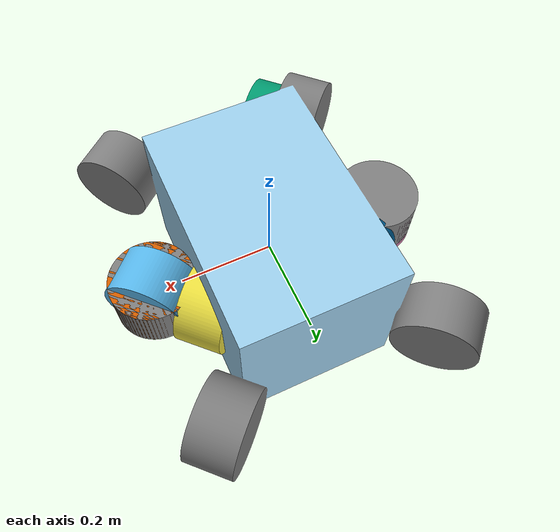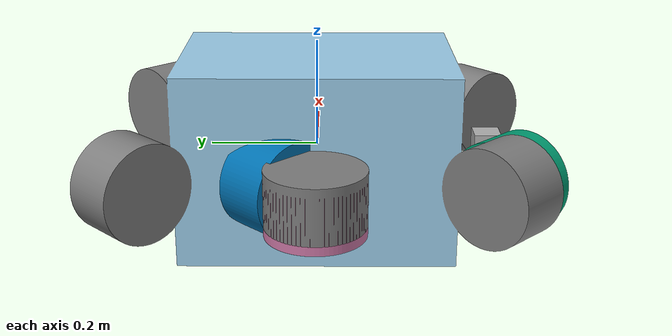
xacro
<?xml version="1.0"?>
<robot name="nautilus"
  xmlns:xacro="http://www.ros.org/wiki/xacro">
  <!-- Constants -->
  <xacro:property name="PI" value="3.1415926535897931"/>
  <xacro:property name="camera_size" value=".05"/>
  <xacro:property name="width" value=".29"/>
  <xacro:property name="length" value=".31"/>
  <xacro:property name="height" value=".24"/>

  <xacro:property name="thruster_radius" value=".04"/>
  <xacro:property name="thruster_height" value=".033"/>

  <!-- Begin defining the ROV -->
  <link name="body">
    <inertial>
      <origin xyz="0 0 0" rpy="0.0 0.0 0.0"/>
      <!-- TOOD: get a better mass estimate -->
      <mass value="60.177"/>
      <inertia ixx="0.083" ixy="0.0" ixz="0.0" iyy="0.083" iyz="0.0" izz="0.0"/>
    </inertial>

    <collision name="body">
      <origin xyz="0 0 0"/>
      <geometry>
        <mesh filename="model://nautilus/meshes/nautilus_sim.dae"/>
      </geometry>
    </collision>

    <visual name="body">
      <geometry>
        <mesh filename="model://nautilus/meshes/nautilus_sim.dae"/>
      </geometry>
    </visual>
  </link>

  <!-- Generic Definitions -->
  <xacro:macro name="thrusters" params="thrusterName x y z r p yaw">
    <link name="${thrusterName}">
      <inertial>
        <mass value="5.5"/>
        <inertia ixx="0.4" ixy="0.0" ixz="0.0" iyy="0.4" iyz="0.0" izz="0.2"/>
      </inertial>

      <collision name="${thrusterName}">
        <geometry>
          <mesh filename="model://nautilus/meshes/propeller.stl"/>
        </geometry>
      </collision>

      <visual name="${thrusterName}">
        <geometry>
          <mesh filename="model://nautilus/meshes/propeller.stl"/>
        </geometry>
      </visual>
    </link>

    <joint name="${thrusterName}_joint" type="fixed">
      <origin xyz="${x} ${y} ${z}" rpy="${r} ${p} ${yaw}"/>
      <parent link="body"/>
      <child link="${thrusterName}"/>
    </joint>
  </xacro:macro>

  <xacro:macro name="cameras" params="cameraName x y z r p yaw">

    <link name="${cameraName}">
      <inertial>
        <mass value="${camera_size * camera_size * camera_size * 1000}"/>
        <inertia ixx="1e-4" ixy="0.0" ixz="0.0" iyy="1e-4" iyz="0.0" izz="1e-4"/>
      </inertial>

      <visual name="${cameraName}">
        <geometry>
          <box size="${camera_size} ${camera_size} ${camera_size}"/>
        </geometry>
      </visual>

      <collision name="${cameraName}">
        <geometry>
          <box size="${camera_size} ${camera_size} ${camera_size}"/>
        </geometry>
      </collision>
    </link>

    <joint name="${cameraName}_joint" type="fixed">
      <origin xyz="${x} ${y} ${z}" rpy="${r} ${p} ${yaw}"/>
      <parent link="body"/>
      <child link="${cameraName}"/>
    </joint>

  </xacro:macro>

  <!-- Instantiations -->
  <!-- current model has the the directions -->
  <!-- x+ -> left -->
  <!-- y+ -> back -->
  <!-- z+ -> up -->
  <xacro:thrusters thrusterName="motor_A" x=".259086" y="-.00382228" z="0" r="${pi/2}" p="0.0" yaw="-${pi/4}"/>
  <xacro:thrusters thrusterName="motor_B" x="-.16" y="-.34" z="-.02" r="${pi/2}" p="0.0" yaw="${pi/4}"/>
  <xacro:thrusters thrusterName="motor_C" x=".16" y=".07" z="-.02" r="${pi/2}" p="0.0" yaw="${pi/4}"/>
  <xacro:thrusters thrusterName="motor_D" x="-.16" y=".07" z="-.02" r="${pi/2}" p="0.0" yaw="-${pi/4}"/>
  <xacro:thrusters thrusterName="motor_E" x=".259086" y="-.00382228" z="0" r="0.0" p="0.0" yaw="0.0"/>
  <xacro:thrusters thrusterName="motor_F" x="-.259691" y="-.000494239" z="-.02" r="0.0" p="0.0" yaw="0.0"/>

  <xacro:cameras cameraName="camera1" x="0.0" y="-0.32" z="0.0" r="0.0" p="0.0" yaw="0.0"/>
  <xacro:cameras cameraName="camera2" x="0.0" y="-0.20" z="-.125" r="0.0" p="0.0" yaw="0.0"/>

  <!-- Sensor Definitions -->
  <gazebo>
    <plugin name="imu_plugin" filename="libgazebo_ros_imu.so">
      <alwaysOn>true</alwaysOn>
      <bodyName>body</bodyName>
      <topicName>imu</topicName>
      <serviceName>imu_service</serviceName>
      <gaussianNoise>0.0</gaussianNoise>
      <updateRate>20.0</updateRate>
    </plugin>
  </gazebo>

  <!-- Plugins -->
  <xacro:include filename="$(find nautilus_description)/urdf/nautilus.gazebo"/>

</robot>
